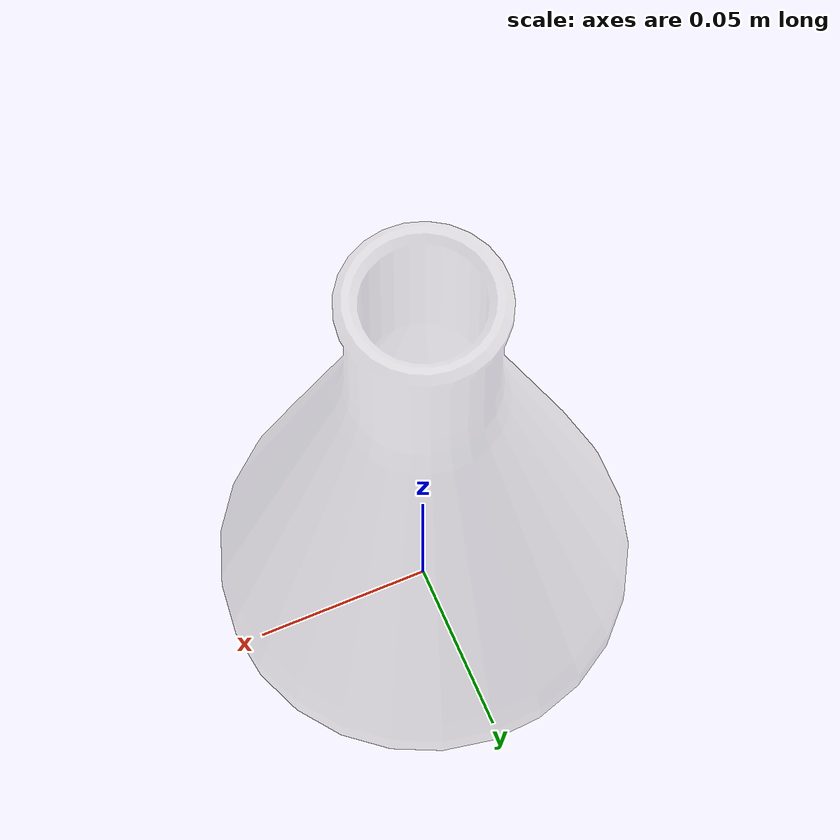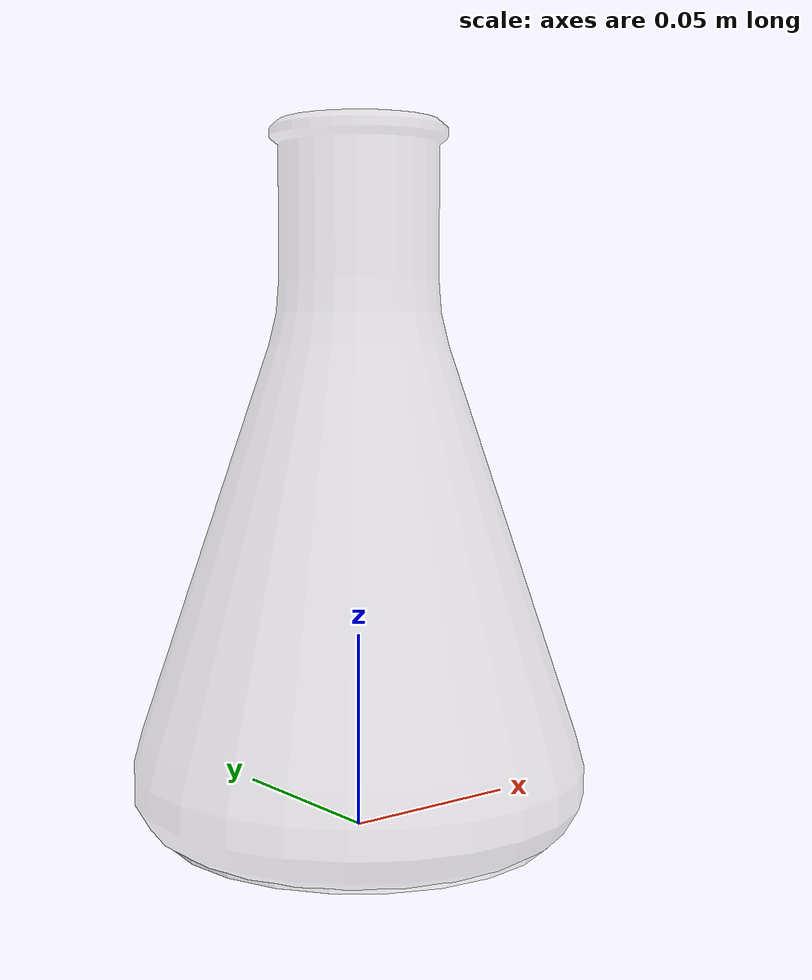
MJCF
<?xml version="1.0" ?>
<mujoco model="conical_flask_mid">
  <asset>
    <texture type="2d" name="material_0" file="material_0.png"/>
    <material name="material_0" texture="material_0" specular="0.4" shininess="0.001" rgba="1 1 1 0.3"/>
    <mesh file="conical_flask_mid.obj" scale="0.005224128503277526 0.005224128503277526 0.005224128503277526"/>
    <mesh file="conical_flask_mid/conical_flask_mid_collision_0.obj" scale="0.005224128503277526 0.005224128503277526 0.005224128503277526"/>
    <mesh file="conical_flask_mid/conical_flask_mid_collision_1.obj" scale="0.005224128503277526 0.005224128503277526 0.005224128503277526"/>
    <mesh file="conical_flask_mid/conical_flask_mid_collision_2.obj" scale="0.005224128503277526 0.005224128503277526 0.005224128503277526"/>
    <mesh file="conical_flask_mid/conical_flask_mid_collision_3.obj" scale="0.005224128503277526 0.005224128503277526 0.005224128503277526"/>
    <mesh file="conical_flask_mid/conical_flask_mid_collision_4.obj" scale="0.005224128503277526 0.005224128503277526 0.005224128503277526"/>
    <mesh file="conical_flask_mid/conical_flask_mid_collision_5.obj" scale="0.005224128503277526 0.005224128503277526 0.005224128503277526"/>
    <mesh file="conical_flask_mid/conical_flask_mid_collision_6.obj" scale="0.005224128503277526 0.005224128503277526 0.005224128503277526"/>
    <mesh file="conical_flask_mid/conical_flask_mid_collision_7.obj" scale="0.005224128503277526 0.005224128503277526 0.005224128503277526"/>
    <mesh file="conical_flask_mid/conical_flask_mid_collision_8.obj" scale="0.005224128503277526 0.005224128503277526 0.005224128503277526"/>
    <mesh file="conical_flask_mid/conical_flask_mid_collision_9.obj" scale="0.005224128503277526 0.005224128503277526 0.005224128503277526"/>
    <mesh file="conical_flask_mid/conical_flask_mid_collision_10.obj" scale="0.005224128503277526 0.005224128503277526 0.005224128503277526"/>
    <mesh file="conical_flask_mid/conical_flask_mid_collision_11.obj" scale="0.005224128503277526 0.005224128503277526 0.005224128503277526"/>
    <mesh file="conical_flask_mid/conical_flask_mid_collision_12.obj" scale="0.005224128503277526 0.005224128503277526 0.005224128503277526"/>
    <mesh file="conical_flask_mid/conical_flask_mid_collision_13.obj" scale="0.005224128503277526 0.005224128503277526 0.005224128503277526"/>
    <mesh file="conical_flask_mid/conical_flask_mid_collision_14.obj" scale="0.005224128503277526 0.005224128503277526 0.005224128503277526"/>
    <mesh file="conical_flask_mid/conical_flask_mid_collision_15.obj" scale="0.005224128503277526 0.005224128503277526 0.005224128503277526"/>
    <mesh file="conical_flask_mid/conical_flask_mid_collision_16.obj" scale="0.005224128503277526 0.005224128503277526 0.005224128503277526"/>
    <mesh file="conical_flask_mid/conical_flask_mid_collision_17.obj" scale="0.005224128503277526 0.005224128503277526 0.005224128503277526"/>
    <mesh file="conical_flask_mid/conical_flask_mid_collision_18.obj" scale="0.005224128503277526 0.005224128503277526 0.005224128503277526"/>
    <mesh file="conical_flask_mid/conical_flask_mid_collision_19.obj" scale="0.005224128503277526 0.005224128503277526 0.005224128503277526"/>
    <mesh file="conical_flask_mid/conical_flask_mid_collision_20.obj" scale="0.005224128503277526 0.005224128503277526 0.005224128503277526"/>
    <mesh file="conical_flask_mid/conical_flask_mid_collision_21.obj" scale="0.005224128503277526 0.005224128503277526 0.005224128503277526"/>
    <mesh file="conical_flask_mid/conical_flask_mid_collision_22.obj" scale="0.005224128503277526 0.005224128503277526 0.005224128503277526"/>
    <mesh file="conical_flask_mid/conical_flask_mid_collision_23.obj" scale="0.005224128503277526 0.005224128503277526 0.005224128503277526"/>
    <mesh file="conical_flask_mid/conical_flask_mid_collision_24.obj" scale="0.005224128503277526 0.005224128503277526 0.005224128503277526"/>
    <mesh file="conical_flask_mid/conical_flask_mid_collision_25.obj" scale="0.005224128503277526 0.005224128503277526 0.005224128503277526"/>
    <mesh file="conical_flask_mid/conical_flask_mid_collision_26.obj" scale="0.005224128503277526 0.005224128503277526 0.005224128503277526"/>
    <mesh file="conical_flask_mid/conical_flask_mid_collision_27.obj" scale="0.005224128503277526 0.005224128503277526 0.005224128503277526"/>
    <mesh file="conical_flask_mid/conical_flask_mid_collision_28.obj" scale="0.005224128503277526 0.005224128503277526 0.005224128503277526"/>
    <mesh file="conical_flask_mid/conical_flask_mid_collision_29.obj" scale="0.005224128503277526 0.005224128503277526 0.005224128503277526"/>
    <mesh file="conical_flask_mid/conical_flask_mid_collision_30.obj" scale="0.005224128503277526 0.005224128503277526 0.005224128503277526"/>
    <mesh file="conical_flask_mid/conical_flask_mid_collision_31.obj" scale="0.005224128503277526 0.005224128503277526 0.005224128503277526"/>
    <mesh file="conical_flask_mid/conical_flask_mid_collision_32.obj" scale="0.005224128503277526 0.005224128503277526 0.005224128503277526"/>
    <mesh file="conical_flask_mid/conical_flask_mid_collision_33.obj" scale="0.005224128503277526 0.005224128503277526 0.005224128503277526"/>
    <mesh file="conical_flask_mid/conical_flask_mid_collision_34.obj" scale="0.005224128503277526 0.005224128503277526 0.005224128503277526"/>
    <mesh file="conical_flask_mid/conical_flask_mid_collision_35.obj" scale="0.005224128503277526 0.005224128503277526 0.005224128503277526"/>
    <mesh file="conical_flask_mid/conical_flask_mid_collision_36.obj" scale="0.005224128503277526 0.005224128503277526 0.005224128503277526"/>
    <mesh file="conical_flask_mid/conical_flask_mid_collision_37.obj" scale="0.005224128503277526 0.005224128503277526 0.005224128503277526"/>
    <mesh file="conical_flask_mid/conical_flask_mid_collision_38.obj" scale="0.005224128503277526 0.005224128503277526 0.005224128503277526"/>
    <mesh file="conical_flask_mid/conical_flask_mid_collision_39.obj" scale="0.005224128503277526 0.005224128503277526 0.005224128503277526"/>
    <mesh file="conical_flask_mid/conical_flask_mid_collision_40.obj" scale="0.005224128503277526 0.005224128503277526 0.005224128503277526"/>
    <mesh file="conical_flask_mid/conical_flask_mid_collision_41.obj" scale="0.005224128503277526 0.005224128503277526 0.005224128503277526"/>
    <mesh file="conical_flask_mid/conical_flask_mid_collision_42.obj" scale="0.005224128503277526 0.005224128503277526 0.005224128503277526"/>
      <material name="CaSO4" rgba="1 1 1 0.7"/>
    <material name="CuCl2" rgba="0.141 1.0 0.174 0.4"/>
    <material name="CuSO4" rgba="0 0.45 1 0.4"/>
    <material name="FeCl3" rgba="0.6475 0.5686 0.023 0.4"/>
    <material name="KMnO4" rgba="0.5 0 0.5 0.4"/>
    <material name="I2" rgba="0.3 0.13 0.0 0.4"/>
    <material name="K2CrO4" rgba="0.57 0.12 0.013 0.4"/>
    <material name="NaCl" rgba="1 1 1 0.3"/>
</asset>
  <worldbody>
    <body name="conical_flask_mid">
      <inertial pos="0 0 0.075000" mass="0.02" diaginertia="0.0008 0.0008 0.0005"/>
      <geom material="material_0" mesh="conical_flask_mid" class="visual"/>
      <geom mesh="conical_flask_mid_collision_0"  class="collision"/>
      <geom mesh="conical_flask_mid_collision_1"  class="collision"/>
      <geom mesh="conical_flask_mid_collision_2"  class="collision"/>
      <geom mesh="conical_flask_mid_collision_3"  class="collision"/>
      <geom mesh="conical_flask_mid_collision_4"  class="collision"/>
      <geom mesh="conical_flask_mid_collision_5"  class="collision"/>
      <geom mesh="conical_flask_mid_collision_6"  class="collision"/>
      <geom mesh="conical_flask_mid_collision_7"  class="collision"/>
      <geom mesh="conical_flask_mid_collision_8"  class="collision"/>
      <geom mesh="conical_flask_mid_collision_9"  class="collision"/>
      <geom mesh="conical_flask_mid_collision_10"  class="collision"/>
      <geom mesh="conical_flask_mid_collision_11"  class="collision"/>
      <geom mesh="conical_flask_mid_collision_12"  class="collision"/>
      <geom mesh="conical_flask_mid_collision_13"  class="collision"/>
      <geom mesh="conical_flask_mid_collision_14"  class="collision"/>
      <geom mesh="conical_flask_mid_collision_15"  class="collision"/>
      <geom mesh="conical_flask_mid_collision_16"  class="collision"/>
      <geom mesh="conical_flask_mid_collision_17"  class="collision"/>
      <geom mesh="conical_flask_mid_collision_18"  class="collision"/>
      <geom mesh="conical_flask_mid_collision_19"  class="collision"/>
      <geom mesh="conical_flask_mid_collision_20"  class="collision"/>
      <geom mesh="conical_flask_mid_collision_21"  class="collision"/>
      <geom mesh="conical_flask_mid_collision_22"  class="collision"/>
      <geom mesh="conical_flask_mid_collision_23"  class="collision"/>
      <geom mesh="conical_flask_mid_collision_24"  class="collision"/>
      <geom mesh="conical_flask_mid_collision_25"  class="collision"/>
      <geom mesh="conical_flask_mid_collision_26"  class="collision"/>
      <geom mesh="conical_flask_mid_collision_27"  class="collision"/>
      <geom mesh="conical_flask_mid_collision_28"  class="collision"/>
      <geom mesh="conical_flask_mid_collision_29"  class="collision"/>
      <geom mesh="conical_flask_mid_collision_30"  class="collision"/>
      <geom mesh="conical_flask_mid_collision_31"  class="collision"/>
      <geom mesh="conical_flask_mid_collision_32"  class="collision"/>
      <geom mesh="conical_flask_mid_collision_33"  class="collision"/>
      <geom mesh="conical_flask_mid_collision_34"  class="collision"/>
      <geom mesh="conical_flask_mid_collision_35"  class="collision"/>
      <geom mesh="conical_flask_mid_collision_36"  class="collision"/>
      <geom mesh="conical_flask_mid_collision_37"  class="collision"/>
      <geom mesh="conical_flask_mid_collision_38"  class="collision"/>
      <geom mesh="conical_flask_mid_collision_39"  class="collision"/>
      <geom mesh="conical_flask_mid_collision_40"  class="collision"/>
      <geom mesh="conical_flask_mid_collision_41"  class="collision"/>
      <geom mesh="conical_flask_mid_collision_42"  class="collision"/>
      <site class="grasppoint" pos="0.0000 0.0000 0.1080"/>
      <site class="grasppoint" pos="0.0000 0.0000 0.1440"/>
      <site class="grasppoint" pos="0.0000 0.0000 0.1710"/>
          <geom name="solution" type="cylinder" size="0.0504 0.0135" pos="0 0 0.0135" material="CaSO4" class="visual"/>
      <site name="top_site" pos="0 0 0.1800" size="0.01" rgba="1 0 0 0"/>
      <site name="bottom_site" pos="0 0 0.000000" size="0.01" rgba="0 1 0 0"/>
</body>
  </worldbody>
  <compiler boundmass="0.015" boundinertia="1e-05" angle="radian"/>
  <default>
    <default class="visual">
      <geom group="2" type="mesh" contype="0" conaffinity="0" density="50"/>
    </default>
    <default class="collision">
      <geom group="3" type="mesh" density="50" friction="1.5 0.1 0.1" solimp="0.9 0.95 0.001" solref="0.02 1"/>
    </default>
    <default class="grasppoint">
      <site type="sphere" size="0.005" group="4" rgba="0 0 1 1"/>
    </default>
  </default>
</mujoco>
